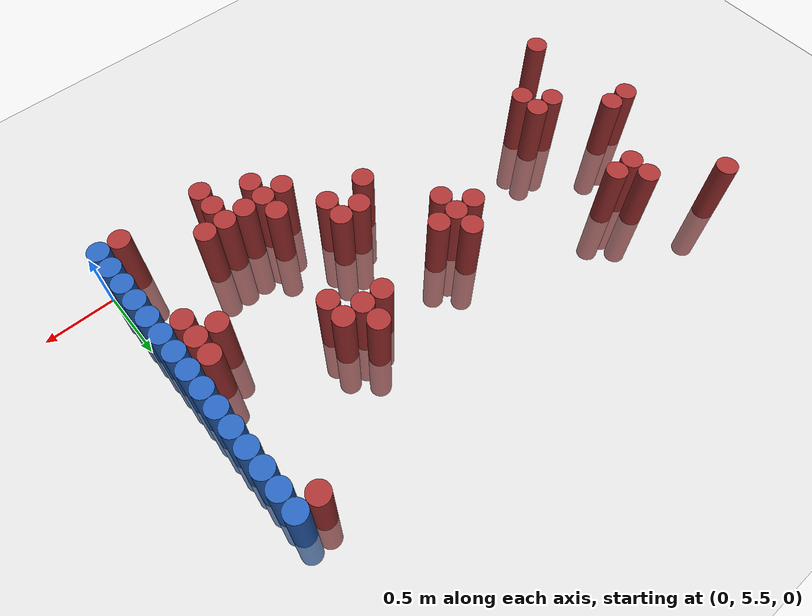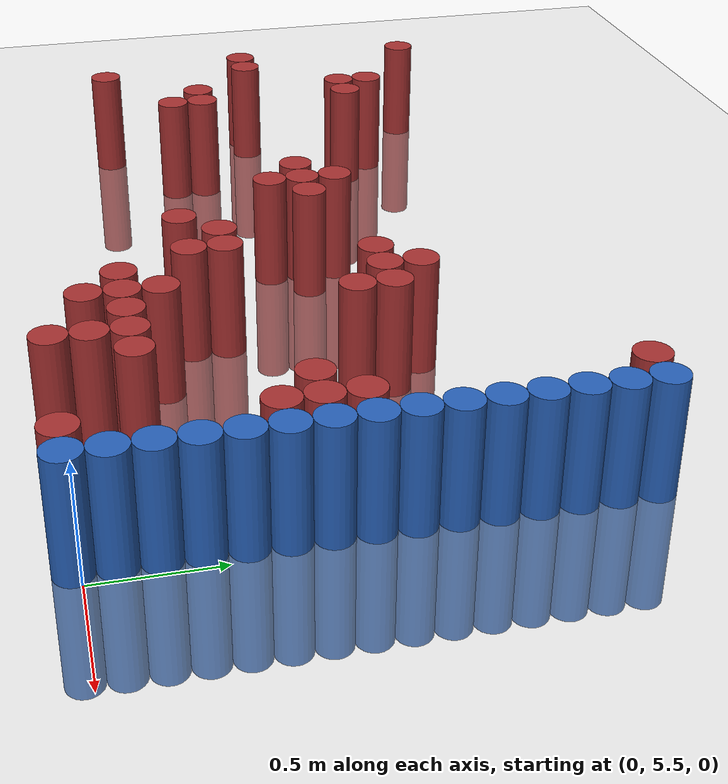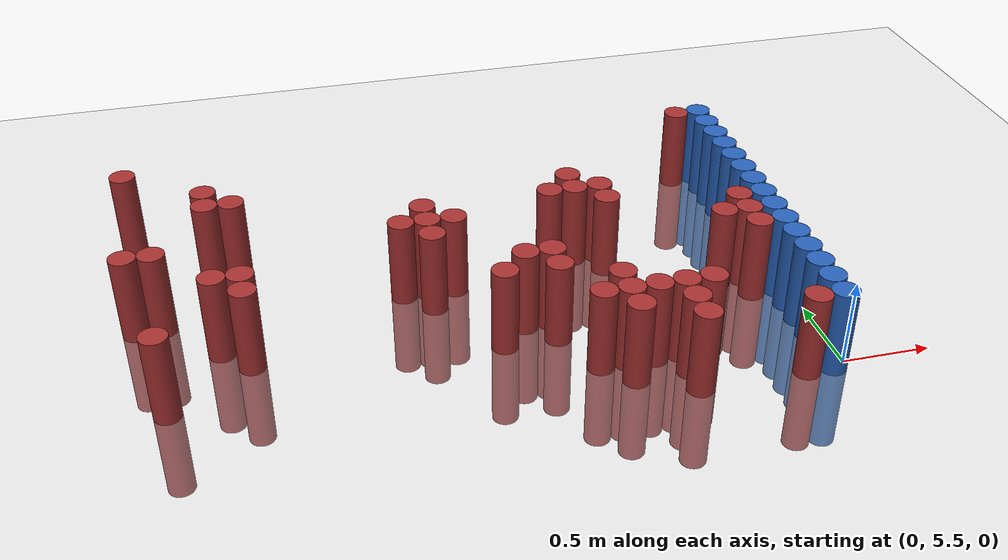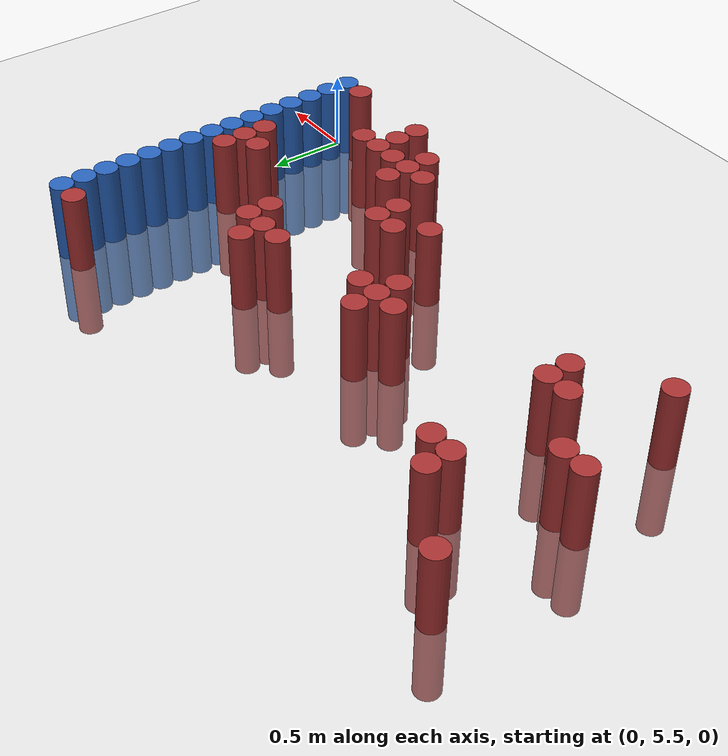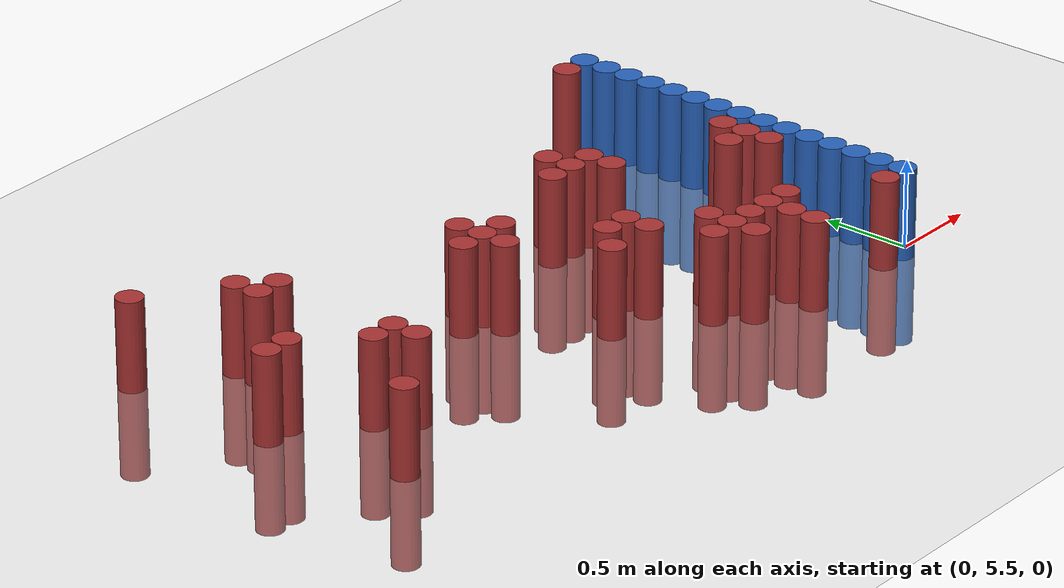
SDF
<sdf version="1.6">
 <world name="default">
  <model name="ground_plane">
   <static>1</static>
   <link name="link">
    <collision name="collision">
     <geometry><plane><normal>0 0 1</normal><size>100 100</size></plane></geometry>
     <surface><friction><ode><mu>100</mu><mu2>50</mu2></ode></friction></surface>
    </collision>
    <visual name="visual">
     <cast_shadows>0</cast_shadows>
     <geometry><plane><normal>0 0 1</normal><size>100 100</size></plane></geometry>
     <material>
      <script><uri>file://media/materials/scripts/gazebo.material</uri><name>Gazebo/Grey</name></script>
     </material>
    </visual>
   </link>
  </model>
  <model name="unit_cylinder_153">
   <static>1</static>
   <pose>-3.675000 6.675000 0.000000 0.000000 0.000000 0.000000</pose>
   <link name="link">
    <inertial>
     <mass>1</mass>
     <inertia><ixx>0.145833</ixx><ixy>0</ixy><ixz>0</ixz><iyy>0.145833</iyy><iyz>0</iyz><izz>0.125</izz></inertia>
    </inertial>
    <collision name="collision">
     <geometry><cylinder><radius>0.075000</radius><length>1</length></cylinder></geometry>
    </collision>
    <visual name="visual">
     <geometry><cylinder><radius>0.075000</radius><length>1</length></cylinder></geometry>
     <material>
      <ambient>0.648000 0.192000 0.192000 1</ambient>
      <diffuse>0.648000 0.192000 0.192000 1</diffuse>
     </material>
     <material>
      <script><name>Gazebo/Grey</name><uri>file://media/materials/scripts/gazebo.material</uri></script>
     </material>
    </visual>
   </link>
  </model>
  <model name="unit_cylinder_154">
   <static>1</static>
   <pose>-3.675000 7.575000 0.000000 0.000000 0.000000 0.000000</pose>
   <link name="link">
    <inertial>
     <mass>1</mass>
     <inertia><ixx>0.145833</ixx><ixy>0</ixy><ixz>0</ixz><iyy>0.145833</iyy><iyz>0</iyz><izz>0.125</izz></inertia>
    </inertial>
    <collision name="collision">
     <geometry><cylinder><radius>0.075000</radius><length>1</length></cylinder></geometry>
    </collision>
    <visual name="visual">
     <geometry><cylinder><radius>0.075000</radius><length>1</length></cylinder></geometry>
     <material>
      <ambient>0.648000 0.192000 0.192000 1</ambient>
      <diffuse>0.648000 0.192000 0.192000 1</diffuse>
     </material>
     <material>
      <script><name>Gazebo/Grey</name><uri>file://media/materials/scripts/gazebo.material</uri></script>
     </material>
    </visual>
   </link>
  </model>
  <model name="unit_cylinder_155">
   <static>1</static>
   <pose>-3.525000 5.925000 0.000000 0.000000 0.000000 0.000000</pose>
   <link name="link">
    <inertial>
     <mass>1</mass>
     <inertia><ixx>0.145833</ixx><ixy>0</ixy><ixz>0</ixz><iyy>0.145833</iyy><iyz>0</iyz><izz>0.125</izz></inertia>
    </inertial>
    <collision name="collision">
     <geometry><cylinder><radius>0.075000</radius><length>1</length></cylinder></geometry>
    </collision>
    <visual name="visual">
     <geometry><cylinder><radius>0.075000</radius><length>1</length></cylinder></geometry>
     <material>
      <ambient>0.648000 0.192000 0.192000 1</ambient>
      <diffuse>0.648000 0.192000 0.192000 1</diffuse>
     </material>
     <material>
      <script><name>Gazebo/Grey</name><uri>file://media/materials/scripts/gazebo.material</uri></script>
     </material>
    </visual>
   </link>
  </model>
  <model name="unit_cylinder_156">
   <static>1</static>
   <pose>-3.525000 6.675000 0.000000 0.000000 0.000000 0.000000</pose>
   <link name="link">
    <inertial>
     <mass>1</mass>
     <inertia><ixx>0.145833</ixx><ixy>0</ixy><ixz>0</ixz><iyy>0.145833</iyy><iyz>0</iyz><izz>0.125</izz></inertia>
    </inertial>
    <collision name="collision">
     <geometry><cylinder><radius>0.075000</radius><length>1</length></cylinder></geometry>
    </collision>
    <visual name="visual">
     <geometry><cylinder><radius>0.075000</radius><length>1</length></cylinder></geometry>
     <material>
      <ambient>0.648000 0.192000 0.192000 1</ambient>
      <diffuse>0.648000 0.192000 0.192000 1</diffuse>
     </material>
     <material>
      <script><name>Gazebo/Grey</name><uri>file://media/materials/scripts/gazebo.material</uri></script>
     </material>
    </visual>
   </link>
  </model>
  <model name="unit_cylinder_163">
   <static>1</static>
   <pose>-3.225000 6.375000 0.000000 0.000000 0.000000 0.000000</pose>
   <link name="link">
    <inertial>
     <mass>1</mass>
     <inertia><ixx>0.145833</ixx><ixy>0</ixy><ixz>0</ixz><iyy>0.145833</iyy><iyz>0</iyz><izz>0.125</izz></inertia>
    </inertial>
    <collision name="collision">
     <geometry><cylinder><radius>0.075000</radius><length>1</length></cylinder></geometry>
    </collision>
    <visual name="visual">
     <geometry><cylinder><radius>0.075000</radius><length>1</length></cylinder></geometry>
     <material>
      <ambient>0.648000 0.192000 0.192000 1</ambient>
      <diffuse>0.648000 0.192000 0.192000 1</diffuse>
     </material>
     <material>
      <script><name>Gazebo/Grey</name><uri>file://media/materials/scripts/gazebo.material</uri></script>
     </material>
    </visual>
   </link>
  </model>
  <model name="unit_cylinder_164">
   <static>1</static>
   <pose>-3.225000 7.125000 0.000000 0.000000 0.000000 0.000000</pose>
   <link name="link">
    <inertial>
     <mass>1</mass>
     <inertia><ixx>0.145833</ixx><ixy>0</ixy><ixz>0</ixz><iyy>0.145833</iyy><iyz>0</iyz><izz>0.125</izz></inertia>
    </inertial>
    <collision name="collision">
     <geometry><cylinder><radius>0.075000</radius><length>1</length></cylinder></geometry>
    </collision>
    <visual name="visual">
     <geometry><cylinder><radius>0.075000</radius><length>1</length></cylinder></geometry>
     <material>
      <ambient>0.648000 0.192000 0.192000 1</ambient>
      <diffuse>0.648000 0.192000 0.192000 1</diffuse>
     </material>
     <material>
      <script><name>Gazebo/Grey</name><uri>file://media/materials/scripts/gazebo.material</uri></script>
     </material>
    </visual>
   </link>
  </model>
  <model name="unit_cylinder_165">
   <static>1</static>
   <pose>-3.225000 7.275000 0.000000 0.000000 0.000000 0.000000</pose>
   <link name="link">
    <inertial>
     <mass>1</mass>
     <inertia><ixx>0.145833</ixx><ixy>0</ixy><ixz>0</ixz><iyy>0.145833</iyy><iyz>0</iyz><izz>0.125</izz></inertia>
    </inertial>
    <collision name="collision">
     <geometry><cylinder><radius>0.075000</radius><length>1</length></cylinder></geometry>
    </collision>
    <visual name="visual">
     <geometry><cylinder><radius>0.075000</radius><length>1</length></cylinder></geometry>
     <material>
      <ambient>0.648000 0.192000 0.192000 1</ambient>
      <diffuse>0.648000 0.192000 0.192000 1</diffuse>
     </material>
     <material>
      <script><name>Gazebo/Grey</name><uri>file://media/materials/scripts/gazebo.material</uri></script>
     </material>
    </visual>
   </link>
  </model>
  <model name="unit_cylinder_168">
   <static>1</static>
   <pose>-3.075000 6.225000 0.000000 0.000000 0.000000 0.000000</pose>
   <link name="link">
    <inertial>
     <mass>1</mass>
     <inertia><ixx>0.145833</ixx><ixy>0</ixy><ixz>0</ixz><iyy>0.145833</iyy><iyz>0</iyz><izz>0.125</izz></inertia>
    </inertial>
    <collision name="collision">
     <geometry><cylinder><radius>0.075000</radius><length>1</length></cylinder></geometry>
    </collision>
    <visual name="visual">
     <geometry><cylinder><radius>0.075000</radius><length>1</length></cylinder></geometry>
     <material>
      <ambient>0.648000 0.192000 0.192000 1</ambient>
      <diffuse>0.648000 0.192000 0.192000 1</diffuse>
     </material>
     <material>
      <script><name>Gazebo/Grey</name><uri>file://media/materials/scripts/gazebo.material</uri></script>
     </material>
    </visual>
   </link>
  </model>
  <model name="unit_cylinder_169">
   <static>1</static>
   <pose>-3.075000 6.375000 0.000000 0.000000 0.000000 0.000000</pose>
   <link name="link">
    <inertial>
     <mass>1</mass>
     <inertia><ixx>0.145833</ixx><ixy>0</ixy><ixz>0</ixz><iyy>0.145833</iyy><iyz>0</iyz><izz>0.125</izz></inertia>
    </inertial>
    <collision name="collision">
     <geometry><cylinder><radius>0.075000</radius><length>1</length></cylinder></geometry>
    </collision>
    <visual name="visual">
     <geometry><cylinder><radius>0.075000</radius><length>1</length></cylinder></geometry>
     <material>
      <ambient>0.648000 0.192000 0.192000 1</ambient>
      <diffuse>0.648000 0.192000 0.192000 1</diffuse>
     </material>
     <material>
      <script><name>Gazebo/Grey</name><uri>file://media/materials/scripts/gazebo.material</uri></script>
     </material>
    </visual>
   </link>
  </model>
  <model name="unit_cylinder_170">
   <static>1</static>
   <pose>-3.075000 7.125000 0.000000 0.000000 0.000000 0.000000</pose>
   <link name="link">
    <inertial>
     <mass>1</mass>
     <inertia><ixx>0.145833</ixx><ixy>0</ixy><ixz>0</ixz><iyy>0.145833</iyy><iyz>0</iyz><izz>0.125</izz></inertia>
    </inertial>
    <collision name="collision">
     <geometry><cylinder><radius>0.075000</radius><length>1</length></cylinder></geometry>
    </collision>
    <visual name="visual">
     <geometry><cylinder><radius>0.075000</radius><length>1</length></cylinder></geometry>
     <material>
      <ambient>0.648000 0.192000 0.192000 1</ambient>
      <diffuse>0.648000 0.192000 0.192000 1</diffuse>
     </material>
     <material>
      <script><name>Gazebo/Grey</name><uri>file://media/materials/scripts/gazebo.material</uri></script>
     </material>
    </visual>
   </link>
  </model>
  <model name="unit_cylinder_183">
   <static>1</static>
   <pose>-2.175000 6.675000 0.000000 0.000000 0.000000 0.000000</pose>
   <link name="link">
    <inertial>
     <mass>1</mass>
     <inertia><ixx>0.145833</ixx><ixy>0</ixy><ixz>0</ixz><iyy>0.145833</iyy><iyz>0</iyz><izz>0.125</izz></inertia>
    </inertial>
    <collision name="collision">
     <geometry><cylinder><radius>0.075000</radius><length>1</length></cylinder></geometry>
    </collision>
    <visual name="visual">
     <geometry><cylinder><radius>0.075000</radius><length>1</length></cylinder></geometry>
     <material>
      <ambient>0.648000 0.192000 0.192000 1</ambient>
      <diffuse>0.648000 0.192000 0.192000 1</diffuse>
     </material>
     <material>
      <script><name>Gazebo/Grey</name><uri>file://media/materials/scripts/gazebo.material</uri></script>
     </material>
    </visual>
   </link>
  </model>
  <model name="unit_cylinder_184">
   <static>1</static>
   <pose>-2.025000 6.525000 0.000000 0.000000 0.000000 0.000000</pose>
   <link name="link">
    <inertial>
     <mass>1</mass>
     <inertia><ixx>0.145833</ixx><ixy>0</ixy><ixz>0</ixz><iyy>0.145833</iyy><iyz>0</iyz><izz>0.125</izz></inertia>
    </inertial>
    <collision name="collision">
     <geometry><cylinder><radius>0.075000</radius><length>1</length></cylinder></geometry>
    </collision>
    <visual name="visual">
     <geometry><cylinder><radius>0.075000</radius><length>1</length></cylinder></geometry>
     <material>
      <ambient>0.648000 0.192000 0.192000 1</ambient>
      <diffuse>0.648000 0.192000 0.192000 1</diffuse>
     </material>
     <material>
      <script><name>Gazebo/Grey</name><uri>file://media/materials/scripts/gazebo.material</uri></script>
     </material>
    </visual>
   </link>
  </model>
  <model name="unit_cylinder_185">
   <static>1</static>
   <pose>-2.025000 6.675000 0.000000 0.000000 0.000000 0.000000</pose>
   <link name="link">
    <inertial>
     <mass>1</mass>
     <inertia><ixx>0.145833</ixx><ixy>0</ixy><ixz>0</ixz><iyy>0.145833</iyy><iyz>0</iyz><izz>0.125</izz></inertia>
    </inertial>
    <collision name="collision">
     <geometry><cylinder><radius>0.075000</radius><length>1</length></cylinder></geometry>
    </collision>
    <visual name="visual">
     <geometry><cylinder><radius>0.075000</radius><length>1</length></cylinder></geometry>
     <material>
      <ambient>0.648000 0.192000 0.192000 1</ambient>
      <diffuse>0.648000 0.192000 0.192000 1</diffuse>
     </material>
     <material>
      <script><name>Gazebo/Grey</name><uri>file://media/materials/scripts/gazebo.material</uri></script>
     </material>
    </visual>
   </link>
  </model>
  <model name="unit_cylinder_186">
   <static>1</static>
   <pose>-2.025000 6.825000 0.000000 0.000000 0.000000 0.000000</pose>
   <link name="link">
    <inertial>
     <mass>1</mass>
     <inertia><ixx>0.145833</ixx><ixy>0</ixy><ixz>0</ixz><iyy>0.145833</iyy><iyz>0</iyz><izz>0.125</izz></inertia>
    </inertial>
    <collision name="collision">
     <geometry><cylinder><radius>0.075000</radius><length>1</length></cylinder></geometry>
    </collision>
    <visual name="visual">
     <geometry><cylinder><radius>0.075000</radius><length>1</length></cylinder></geometry>
     <material>
      <ambient>0.648000 0.192000 0.192000 1</ambient>
      <diffuse>0.648000 0.192000 0.192000 1</diffuse>
     </material>
     <material>
      <script><name>Gazebo/Grey</name><uri>file://media/materials/scripts/gazebo.material</uri></script>
     </material>
    </visual>
   </link>
  </model>
  <model name="unit_cylinder_190">
   <static>1</static>
   <pose>-1.875000 6.675000 0.000000 0.000000 0.000000 0.000000</pose>
   <link name="link">
    <inertial>
     <mass>1</mass>
     <inertia><ixx>0.145833</ixx><ixy>0</ixy><ixz>0</ixz><iyy>0.145833</iyy><iyz>0</iyz><izz>0.125</izz></inertia>
    </inertial>
    <collision name="collision">
     <geometry><cylinder><radius>0.075000</radius><length>1</length></cylinder></geometry>
    </collision>
    <visual name="visual">
     <geometry><cylinder><radius>0.075000</radius><length>1</length></cylinder></geometry>
     <material>
      <ambient>0.648000 0.192000 0.192000 1</ambient>
      <diffuse>0.648000 0.192000 0.192000 1</diffuse>
     </material>
     <material>
      <script><name>Gazebo/Grey</name><uri>file://media/materials/scripts/gazebo.material</uri></script>
     </material>
    </visual>
   </link>
  </model>
  <model name="unit_cylinder_195">
   <static>1</static>
   <pose>-1.725000 6.075000 0.000000 0.000000 0.000000 0.000000</pose>
   <link name="link">
    <inertial>
     <mass>1</mass>
     <inertia><ixx>0.145833</ixx><ixy>0</ixy><ixz>0</ixz><iyy>0.145833</iyy><iyz>0</iyz><izz>0.125</izz></inertia>
    </inertial>
    <collision name="collision">
     <geometry><cylinder><radius>0.075000</radius><length>1</length></cylinder></geometry>
    </collision>
    <visual name="visual">
     <geometry><cylinder><radius>0.075000</radius><length>1</length></cylinder></geometry>
     <material>
      <ambient>0.648000 0.192000 0.192000 1</ambient>
      <diffuse>0.648000 0.192000 0.192000 1</diffuse>
     </material>
     <material>
      <script><name>Gazebo/Grey</name><uri>file://media/materials/scripts/gazebo.material</uri></script>
     </material>
    </visual>
   </link>
  </model>
  <model name="unit_cylinder_197">
   <static>1</static>
   <pose>-1.575000 6.225000 0.000000 0.000000 0.000000 0.000000</pose>
   <link name="link">
    <inertial>
     <mass>1</mass>
     <inertia><ixx>0.145833</ixx><ixy>0</ixy><ixz>0</ixz><iyy>0.145833</iyy><iyz>0</iyz><izz>0.125</izz></inertia>
    </inertial>
    <collision name="collision">
     <geometry><cylinder><radius>0.075000</radius><length>1</length></cylinder></geometry>
    </collision>
    <visual name="visual">
     <geometry><cylinder><radius>0.075000</radius><length>1</length></cylinder></geometry>
     <material>
      <ambient>0.648000 0.192000 0.192000 1</ambient>
      <diffuse>0.648000 0.192000 0.192000 1</diffuse>
     </material>
     <material>
      <script><name>Gazebo/Grey</name><uri>file://media/materials/scripts/gazebo.material</uri></script>
     </material>
    </visual>
   </link>
  </model>
  <model name="unit_cylinder_198">
   <static>1</static>
   <pose>-1.425000 6.075000 0.000000 0.000000 0.000000 0.000000</pose>
   <link name="link">
    <inertial>
     <mass>1</mass>
     <inertia><ixx>0.145833</ixx><ixy>0</ixy><ixz>0</ixz><iyy>0.145833</iyy><iyz>0</iyz><izz>0.125</izz></inertia>
    </inertial>
    <collision name="collision">
     <geometry><cylinder><radius>0.075000</radius><length>1</length></cylinder></geometry>
    </collision>
    <visual name="visual">
     <geometry><cylinder><radius>0.075000</radius><length>1</length></cylinder></geometry>
     <material>
      <ambient>0.648000 0.192000 0.192000 1</ambient>
      <diffuse>0.648000 0.192000 0.192000 1</diffuse>
     </material>
     <material>
      <script><name>Gazebo/Grey</name><uri>file://media/materials/scripts/gazebo.material</uri></script>
     </material>
    </visual>
   </link>
  </model>
  <model name="unit_cylinder_199">
   <static>1</static>
   <pose>-1.425000 6.225000 0.000000 0.000000 0.000000 0.000000</pose>
   <link name="link">
    <inertial>
     <mass>1</mass>
     <inertia><ixx>0.145833</ixx><ixy>0</ixy><ixz>0</ixz><iyy>0.145833</iyy><iyz>0</iyz><izz>0.125</izz></inertia>
    </inertial>
    <collision name="collision">
     <geometry><cylinder><radius>0.075000</radius><length>1</length></cylinder></geometry>
    </collision>
    <visual name="visual">
     <geometry><cylinder><radius>0.075000</radius><length>1</length></cylinder></geometry>
     <material>
      <ambient>0.648000 0.192000 0.192000 1</ambient>
      <diffuse>0.648000 0.192000 0.192000 1</diffuse>
     </material>
     <material>
      <script><name>Gazebo/Grey</name><uri>file://media/materials/scripts/gazebo.material</uri></script>
     </material>
    </visual>
   </link>
  </model>
  <model name="unit_cylinder_200">
   <static>1</static>
   <pose>-1.275000 5.775000 0.000000 0.000000 0.000000 0.000000</pose>
   <link name="link">
    <inertial>
     <mass>1</mass>
     <inertia><ixx>0.145833</ixx><ixy>0</ixy><ixz>0</ixz><iyy>0.145833</iyy><iyz>0</iyz><izz>0.125</izz></inertia>
    </inertial>
    <collision name="collision">
     <geometry><cylinder><radius>0.075000</radius><length>1</length></cylinder></geometry>
    </collision>
    <visual name="visual">
     <geometry><cylinder><radius>0.075000</radius><length>1</length></cylinder></geometry>
     <material>
      <ambient>0.648000 0.192000 0.192000 1</ambient>
      <diffuse>0.648000 0.192000 0.192000 1</diffuse>
     </material>
     <material>
      <script><name>Gazebo/Grey</name><uri>file://media/materials/scripts/gazebo.material</uri></script>
     </material>
    </visual>
   </link>
  </model>
  <model name="unit_cylinder_201">
   <static>1</static>
   <pose>-1.275000 6.825000 0.000000 0.000000 0.000000 0.000000</pose>
   <link name="link">
    <inertial>
     <mass>1</mass>
     <inertia><ixx>0.145833</ixx><ixy>0</ixy><ixz>0</ixz><iyy>0.145833</iyy><iyz>0</iyz><izz>0.125</izz></inertia>
    </inertial>
    <collision name="collision">
     <geometry><cylinder><radius>0.075000</radius><length>1</length></cylinder></geometry>
    </collision>
    <visual name="visual">
     <geometry><cylinder><radius>0.075000</radius><length>1</length></cylinder></geometry>
     <material>
      <ambient>0.648000 0.192000 0.192000 1</ambient>
      <diffuse>0.648000 0.192000 0.192000 1</diffuse>
     </material>
     <material>
      <script><name>Gazebo/Grey</name><uri>file://media/materials/scripts/gazebo.material</uri></script>
     </material>
    </visual>
   </link>
  </model>
  <model name="unit_cylinder_204">
   <static>1</static>
   <pose>-1.125000 5.625000 0.000000 0.000000 0.000000 0.000000</pose>
   <link name="link">
    <inertial>
     <mass>1</mass>
     <inertia><ixx>0.145833</ixx><ixy>0</ixy><ixz>0</ixz><iyy>0.145833</iyy><iyz>0</iyz><izz>0.125</izz></inertia>
    </inertial>
    <collision name="collision">
     <geometry><cylinder><radius>0.075000</radius><length>1</length></cylinder></geometry>
    </collision>
    <visual name="visual">
     <geometry><cylinder><radius>0.075000</radius><length>1</length></cylinder></geometry>
     <material>
      <ambient>0.648000 0.192000 0.192000 1</ambient>
      <diffuse>0.648000 0.192000 0.192000 1</diffuse>
     </material>
     <material>
      <script><name>Gazebo/Grey</name><uri>file://media/materials/scripts/gazebo.material</uri></script>
     </material>
    </visual>
   </link>
  </model>
  <model name="unit_cylinder_205">
   <static>1</static>
   <pose>-1.125000 5.775000 0.000000 0.000000 0.000000 0.000000</pose>
   <link name="link">
    <inertial>
     <mass>1</mass>
     <inertia><ixx>0.145833</ixx><ixy>0</ixy><ixz>0</ixz><iyy>0.145833</iyy><iyz>0</iyz><izz>0.125</izz></inertia>
    </inertial>
    <collision name="collision">
     <geometry><cylinder><radius>0.075000</radius><length>1</length></cylinder></geometry>
    </collision>
    <visual name="visual">
     <geometry><cylinder><radius>0.075000</radius><length>1</length></cylinder></geometry>
     <material>
      <ambient>0.648000 0.192000 0.192000 1</ambient>
      <diffuse>0.648000 0.192000 0.192000 1</diffuse>
     </material>
     <material>
      <script><name>Gazebo/Grey</name><uri>file://media/materials/scripts/gazebo.material</uri></script>
     </material>
    </visual>
   </link>
  </model>
  <model name="unit_cylinder_206">
   <static>1</static>
   <pose>-1.125000 5.925000 0.000000 0.000000 0.000000 0.000000</pose>
   <link name="link">
    <inertial>
     <mass>1</mass>
     <inertia><ixx>0.145833</ixx><ixy>0</ixy><ixz>0</ixz><iyy>0.145833</iyy><iyz>0</iyz><izz>0.125</izz></inertia>
    </inertial>
    <collision name="collision">
     <geometry><cylinder><radius>0.075000</radius><length>1</length></cylinder></geometry>
    </collision>
    <visual name="visual">
     <geometry><cylinder><radius>0.075000</radius><length>1</length></cylinder></geometry>
     <material>
      <ambient>0.648000 0.192000 0.192000 1</ambient>
      <diffuse>0.648000 0.192000 0.192000 1</diffuse>
     </material>
     <material>
      <script><name>Gazebo/Grey</name><uri>file://media/materials/scripts/gazebo.material</uri></script>
     </material>
    </visual>
   </link>
  </model>
  <model name="unit_cylinder_207">
   <static>1</static>
   <pose>-1.125000 6.825000 0.000000 0.000000 0.000000 0.000000</pose>
   <link name="link">
    <inertial>
     <mass>1</mass>
     <inertia><ixx>0.145833</ixx><ixy>0</ixy><ixz>0</ixz><iyy>0.145833</iyy><iyz>0</iyz><izz>0.125</izz></inertia>
    </inertial>
    <collision name="collision">
     <geometry><cylinder><radius>0.075000</radius><length>1</length></cylinder></geometry>
    </collision>
    <visual name="visual">
     <geometry><cylinder><radius>0.075000</radius><length>1</length></cylinder></geometry>
     <material>
      <ambient>0.648000 0.192000 0.192000 1</ambient>
      <diffuse>0.648000 0.192000 0.192000 1</diffuse>
     </material>
     <material>
      <script><name>Gazebo/Grey</name><uri>file://media/materials/scripts/gazebo.material</uri></script>
     </material>
    </visual>
   </link>
  </model>
  <model name="unit_cylinder_208">
   <static>1</static>
   <pose>-1.125000 6.975000 0.000000 0.000000 0.000000 0.000000</pose>
   <link name="link">
    <inertial>
     <mass>1</mass>
     <inertia><ixx>0.145833</ixx><ixy>0</ixy><ixz>0</ixz><iyy>0.145833</iyy><iyz>0</iyz><izz>0.125</izz></inertia>
    </inertial>
    <collision name="collision">
     <geometry><cylinder><radius>0.075000</radius><length>1</length></cylinder></geometry>
    </collision>
    <visual name="visual">
     <geometry><cylinder><radius>0.075000</radius><length>1</length></cylinder></geometry>
     <material>
      <ambient>0.648000 0.192000 0.192000 1</ambient>
      <diffuse>0.648000 0.192000 0.192000 1</diffuse>
     </material>
     <material>
      <script><name>Gazebo/Grey</name><uri>file://media/materials/scripts/gazebo.material</uri></script>
     </material>
    </visual>
   </link>
  </model>
  <model name="unit_cylinder_211">
   <static>1</static>
   <pose>-0.975000 5.775000 0.000000 0.000000 0.000000 0.000000</pose>
   <link name="link">
    <inertial>
     <mass>1</mass>
     <inertia><ixx>0.145833</ixx><ixy>0</ixy><ixz>0</ixz><iyy>0.145833</iyy><iyz>0</iyz><izz>0.125</izz></inertia>
    </inertial>
    <collision name="collision">
     <geometry><cylinder><radius>0.075000</radius><length>1</length></cylinder></geometry>
    </collision>
    <visual name="visual">
     <geometry><cylinder><radius>0.075000</radius><length>1</length></cylinder></geometry>
     <material>
      <ambient>0.648000 0.192000 0.192000 1</ambient>
      <diffuse>0.648000 0.192000 0.192000 1</diffuse>
     </material>
     <material>
      <script><name>Gazebo/Grey</name><uri>file://media/materials/scripts/gazebo.material</uri></script>
     </material>
    </visual>
   </link>
  </model>
  <model name="unit_cylinder_212">
   <static>1</static>
   <pose>-0.975000 6.675000 0.000000 0.000000 0.000000 0.000000</pose>
   <link name="link">
    <inertial>
     <mass>1</mass>
     <inertia><ixx>0.145833</ixx><ixy>0</ixy><ixz>0</ixz><iyy>0.145833</iyy><iyz>0</iyz><izz>0.125</izz></inertia>
    </inertial>
    <collision name="collision">
     <geometry><cylinder><radius>0.075000</radius><length>1</length></cylinder></geometry>
    </collision>
    <visual name="visual">
     <geometry><cylinder><radius>0.075000</radius><length>1</length></cylinder></geometry>
     <material>
      <ambient>0.648000 0.192000 0.192000 1</ambient>
      <diffuse>0.648000 0.192000 0.192000 1</diffuse>
     </material>
     <material>
      <script><name>Gazebo/Grey</name><uri>file://media/materials/scripts/gazebo.material</uri></script>
     </material>
    </visual>
   </link>
  </model>
  <model name="unit_cylinder_213">
   <static>1</static>
   <pose>-0.975000 6.825000 0.000000 0.000000 0.000000 0.000000</pose>
   <link name="link">
    <inertial>
     <mass>1</mass>
     <inertia><ixx>0.145833</ixx><ixy>0</ixy><ixz>0</ixz><iyy>0.145833</iyy><iyz>0</iyz><izz>0.125</izz></inertia>
    </inertial>
    <collision name="collision">
     <geometry><cylinder><radius>0.075000</radius><length>1</length></cylinder></geometry>
    </collision>
    <visual name="visual">
     <geometry><cylinder><radius>0.075000</radius><length>1</length></cylinder></geometry>
     <material>
      <ambient>0.648000 0.192000 0.192000 1</ambient>
      <diffuse>0.648000 0.192000 0.192000 1</diffuse>
     </material>
     <material>
      <script><name>Gazebo/Grey</name><uri>file://media/materials/scripts/gazebo.material</uri></script>
     </material>
    </visual>
   </link>
  </model>
  <model name="unit_cylinder_215">
   <static>1</static>
   <pose>-0.825000 5.475000 0.000000 0.000000 0.000000 0.000000</pose>
   <link name="link">
    <inertial>
     <mass>1</mass>
     <inertia><ixx>0.145833</ixx><ixy>0</ixy><ixz>0</ixz><iyy>0.145833</iyy><iyz>0</iyz><izz>0.125</izz></inertia>
    </inertial>
    <collision name="collision">
     <geometry><cylinder><radius>0.075000</radius><length>1</length></cylinder></geometry>
    </collision>
    <visual name="visual">
     <geometry><cylinder><radius>0.075000</radius><length>1</length></cylinder></geometry>
     <material>
      <ambient>0.648000 0.192000 0.192000 1</ambient>
      <diffuse>0.648000 0.192000 0.192000 1</diffuse>
     </material>
     <material>
      <script><name>Gazebo/Grey</name><uri>file://media/materials/scripts/gazebo.material</uri></script>
     </material>
    </visual>
   </link>
  </model>
  <model name="unit_cylinder_216">
   <static>1</static>
   <pose>-0.825000 5.625000 0.000000 0.000000 0.000000 0.000000</pose>
   <link name="link">
    <inertial>
     <mass>1</mass>
     <inertia><ixx>0.145833</ixx><ixy>0</ixy><ixz>0</ixz><iyy>0.145833</iyy><iyz>0</iyz><izz>0.125</izz></inertia>
    </inertial>
    <collision name="collision">
     <geometry><cylinder><radius>0.075000</radius><length>1</length></cylinder></geometry>
    </collision>
    <visual name="visual">
     <geometry><cylinder><radius>0.075000</radius><length>1</length></cylinder></geometry>
     <material>
      <ambient>0.648000 0.192000 0.192000 1</ambient>
      <diffuse>0.648000 0.192000 0.192000 1</diffuse>
     </material>
     <material>
      <script><name>Gazebo/Grey</name><uri>file://media/materials/scripts/gazebo.material</uri></script>
     </material>
    </visual>
   </link>
  </model>
  <model name="unit_cylinder_217">
   <static>1</static>
   <pose>-0.825000 5.775000 0.000000 0.000000 0.000000 0.000000</pose>
   <link name="link">
    <inertial>
     <mass>1</mass>
     <inertia><ixx>0.145833</ixx><ixy>0</ixy><ixz>0</ixz><iyy>0.145833</iyy><iyz>0</iyz><izz>0.125</izz></inertia>
    </inertial>
    <collision name="collision">
     <geometry><cylinder><radius>0.075000</radius><length>1</length></cylinder></geometry>
    </collision>
    <visual name="visual">
     <geometry><cylinder><radius>0.075000</radius><length>1</length></cylinder></geometry>
     <material>
      <ambient>0.648000 0.192000 0.192000 1</ambient>
      <diffuse>0.648000 0.192000 0.192000 1</diffuse>
     </material>
     <material>
      <script><name>Gazebo/Grey</name><uri>file://media/materials/scripts/gazebo.material</uri></script>
     </material>
    </visual>
   </link>
  </model>
  <model name="unit_cylinder_221">
   <static>1</static>
   <pose>-0.675000 5.775000 0.000000 0.000000 0.000000 0.000000</pose>
   <link name="link">
    <inertial>
     <mass>1</mass>
     <inertia><ixx>0.145833</ixx><ixy>0</ixy><ixz>0</ixz><iyy>0.145833</iyy><iyz>0</iyz><izz>0.125</izz></inertia>
    </inertial>
    <collision name="collision">
     <geometry><cylinder><radius>0.075000</radius><length>1</length></cylinder></geometry>
    </collision>
    <visual name="visual">
     <geometry><cylinder><radius>0.075000</radius><length>1</length></cylinder></geometry>
     <material>
      <ambient>0.648000 0.192000 0.192000 1</ambient>
      <diffuse>0.648000 0.192000 0.192000 1</diffuse>
     </material>
     <material>
      <script><name>Gazebo/Grey</name><uri>file://media/materials/scripts/gazebo.material</uri></script>
     </material>
    </visual>
   </link>
  </model>
  <model name="unit_cylinder_229">
   <static>1</static>
   <pose>-0.375000 6.375000 0.000000 0.000000 0.000000 0.000000</pose>
   <link name="link">
    <inertial>
     <mass>1</mass>
     <inertia><ixx>0.145833</ixx><ixy>0</ixy><ixz>0</ixz><iyy>0.145833</iyy><iyz>0</iyz><izz>0.125</izz></inertia>
    </inertial>
    <collision name="collision">
     <geometry><cylinder><radius>0.075000</radius><length>1</length></cylinder></geometry>
    </collision>
    <visual name="visual">
     <geometry><cylinder><radius>0.075000</radius><length>1</length></cylinder></geometry>
     <material>
      <ambient>0.648000 0.192000 0.192000 1</ambient>
      <diffuse>0.648000 0.192000 0.192000 1</diffuse>
     </material>
     <material>
      <script><name>Gazebo/Grey</name><uri>file://media/materials/scripts/gazebo.material</uri></script>
     </material>
    </visual>
   </link>
  </model>
  <model name="unit_cylinder_235">
   <static>1</static>
   <pose>-0.225000 5.475000 0.000000 0.000000 0.000000 0.000000</pose>
   <link name="link">
    <inertial>
     <mass>1</mass>
     <inertia><ixx>0.145833</ixx><ixy>0</ixy><ixz>0</ixz><iyy>0.145833</iyy><iyz>0</iyz><izz>0.125</izz></inertia>
    </inertial>
    <collision name="collision">
     <geometry><cylinder><radius>0.075000</radius><length>1</length></cylinder></geometry>
    </collision>
    <visual name="visual">
     <geometry><cylinder><radius>0.075000</radius><length>1</length></cylinder></geometry>
     <material>
      <ambient>0.648000 0.192000 0.192000 1</ambient>
      <diffuse>0.648000 0.192000 0.192000 1</diffuse>
     </material>
     <material>
      <script><name>Gazebo/Grey</name><uri>file://media/materials/scripts/gazebo.material</uri></script>
     </material>
    </visual>
   </link>
  </model>
  <model name="unit_cylinder_236">
   <static>1</static>
   <pose>-0.225000 6.225000 0.000000 0.000000 0.000000 0.000000</pose>
   <link name="link">
    <inertial>
     <mass>1</mass>
     <inertia><ixx>0.145833</ixx><ixy>0</ixy><ixz>0</ixz><iyy>0.145833</iyy><iyz>0</iyz><izz>0.125</izz></inertia>
    </inertial>
    <collision name="collision">
     <geometry><cylinder><radius>0.075000</radius><length>1</length></cylinder></geometry>
    </collision>
    <visual name="visual">
     <geometry><cylinder><radius>0.075000</radius><length>1</length></cylinder></geometry>
     <material>
      <ambient>0.648000 0.192000 0.192000 1</ambient>
      <diffuse>0.648000 0.192000 0.192000 1</diffuse>
     </material>
     <material>
      <script><name>Gazebo/Grey</name><uri>file://media/materials/scripts/gazebo.material</uri></script>
     </material>
    </visual>
   </link>
  </model>
  <model name="unit_cylinder_237">
   <static>1</static>
   <pose>-0.225000 6.375000 0.000000 0.000000 0.000000 0.000000</pose>
   <link name="link">
    <inertial>
     <mass>1</mass>
     <inertia><ixx>0.145833</ixx><ixy>0</ixy><ixz>0</ixz><iyy>0.145833</iyy><iyz>0</iyz><izz>0.125</izz></inertia>
    </inertial>
    <collision name="collision">
     <geometry><cylinder><radius>0.075000</radius><length>1</length></cylinder></geometry>
    </collision>
    <visual name="visual">
     <geometry><cylinder><radius>0.075000</radius><length>1</length></cylinder></geometry>
     <material>
      <ambient>0.648000 0.192000 0.192000 1</ambient>
      <diffuse>0.648000 0.192000 0.192000 1</diffuse>
     </material>
     <material>
      <script><name>Gazebo/Grey</name><uri>file://media/materials/scripts/gazebo.material</uri></script>
     </material>
    </visual>
   </link>
  </model>
  <model name="unit_cylinder_238">
   <static>1</static>
   <pose>-0.225000 6.525000 0.000000 0.000000 0.000000 0.000000</pose>
   <link name="link">
    <inertial>
     <mass>1</mass>
     <inertia><ixx>0.145833</ixx><ixy>0</ixy><ixz>0</ixz><iyy>0.145833</iyy><iyz>0</iyz><izz>0.125</izz></inertia>
    </inertial>
    <collision name="collision">
     <geometry><cylinder><radius>0.075000</radius><length>1</length></cylinder></geometry>
    </collision>
    <visual name="visual">
     <geometry><cylinder><radius>0.075000</radius><length>1</length></cylinder></geometry>
     <material>
      <ambient>0.648000 0.192000 0.192000 1</ambient>
      <diffuse>0.648000 0.192000 0.192000 1</diffuse>
     </material>
     <material>
      <script><name>Gazebo/Grey</name><uri>file://media/materials/scripts/gazebo.material</uri></script>
     </material>
    </visual>
   </link>
  </model>
  <model name="unit_cylinder_239">
   <static>1</static>
   <pose>-0.225000 7.575000 0.000000 0.000000 0.000000 0.000000</pose>
   <link name="link">
    <inertial>
     <mass>1</mass>
     <inertia><ixx>0.145833</ixx><ixy>0</ixy><ixz>0</ixz><iyy>0.145833</iyy><iyz>0</iyz><izz>0.125</izz></inertia>
    </inertial>
    <collision name="collision">
     <geometry><cylinder><radius>0.075000</radius><length>1</length></cylinder></geometry>
    </collision>
    <visual name="visual">
     <geometry><cylinder><radius>0.075000</radius><length>1</length></cylinder></geometry>
     <material>
      <ambient>0.648000 0.192000 0.192000 1</ambient>
      <diffuse>0.648000 0.192000 0.192000 1</diffuse>
     </material>
     <material>
      <script><name>Gazebo/Grey</name><uri>file://media/materials/scripts/gazebo.material</uri></script>
     </material>
    </visual>
   </link>
  </model>
  <model name="unit_cylinder_244">
   <static>1</static>
   <pose>-0.075000 5.475000 0.000000 0.000000 0.000000 0.000000</pose>
   <link name="link">
    <inertial>
     <mass>1</mass>
     <inertia><ixx>0.145833</ixx><ixy>0</ixy><ixz>0</ixz><iyy>0.145833</iyy><iyz>0</iyz><izz>0.125</izz></inertia>
    </inertial>
    <collision name="collision">
     <geometry><cylinder><radius>0.075000</radius><length>1</length></cylinder></geometry>
    </collision>
    <visual name="visual">
     <geometry><cylinder><radius>0.075000</radius><length>1</length></cylinder></geometry>
     <material>
      <ambient>0.152000 0.379000 0.720000 1</ambient>
      <diffuse>0.152000 0.379000 0.720000 1</diffuse>
     </material>
     <material>
      <script><name>Gazebo/Grey</name><uri>file://media/materials/scripts/gazebo.material</uri></script>
     </material>
    </visual>
   </link>
  </model>
  <model name="unit_cylinder_245">
   <static>1</static>
   <pose>-0.075000 5.625000 0.000000 0.000000 0.000000 0.000000</pose>
   <link name="link">
    <inertial>
     <mass>1</mass>
     <inertia><ixx>0.145833</ixx><ixy>0</ixy><ixz>0</ixz><iyy>0.145833</iyy><iyz>0</iyz><izz>0.125</izz></inertia>
    </inertial>
    <collision name="collision">
     <geometry><cylinder><radius>0.075000</radius><length>1</length></cylinder></geometry>
    </collision>
    <visual name="visual">
     <geometry><cylinder><radius>0.075000</radius><length>1</length></cylinder></geometry>
     <material>
      <ambient>0.152000 0.379000 0.720000 1</ambient>
      <diffuse>0.152000 0.379000 0.720000 1</diffuse>
     </material>
     <material>
      <script><name>Gazebo/Grey</name><uri>file://media/materials/scripts/gazebo.material</uri></script>
     </material>
    </visual>
   </link>
  </model>
  <model name="unit_cylinder_246">
   <static>1</static>
   <pose>-0.075000 5.775000 0.000000 0.000000 0.000000 0.000000</pose>
   <link name="link">
    <inertial>
     <mass>1</mass>
     <inertia><ixx>0.145833</ixx><ixy>0</ixy><ixz>0</ixz><iyy>0.145833</iyy><iyz>0</iyz><izz>0.125</izz></inertia>
    </inertial>
    <collision name="collision">
     <geometry><cylinder><radius>0.075000</radius><length>1</length></cylinder></geometry>
    </collision>
    <visual name="visual">
     <geometry><cylinder><radius>0.075000</radius><length>1</length></cylinder></geometry>
     <material>
      <ambient>0.152000 0.379000 0.720000 1</ambient>
      <diffuse>0.152000 0.379000 0.720000 1</diffuse>
     </material>
     <material>
      <script><name>Gazebo/Grey</name><uri>file://media/materials/scripts/gazebo.material</uri></script>
     </material>
    </visual>
   </link>
  </model>
  <model name="unit_cylinder_247">
   <static>1</static>
   <pose>-0.075000 5.925000 0.000000 0.000000 0.000000 0.000000</pose>
   <link name="link">
    <inertial>
     <mass>1</mass>
     <inertia><ixx>0.145833</ixx><ixy>0</ixy><ixz>0</ixz><iyy>0.145833</iyy><iyz>0</iyz><izz>0.125</izz></inertia>
    </inertial>
    <collision name="collision">
     <geometry><cylinder><radius>0.075000</radius><length>1</length></cylinder></geometry>
    </collision>
    <visual name="visual">
     <geometry><cylinder><radius>0.075000</radius><length>1</length></cylinder></geometry>
     <material>
      <ambient>0.152000 0.379000 0.720000 1</ambient>
      <diffuse>0.152000 0.379000 0.720000 1</diffuse>
     </material>
     <material>
      <script><name>Gazebo/Grey</name><uri>file://media/materials/scripts/gazebo.material</uri></script>
     </material>
    </visual>
   </link>
  </model>
  <model name="unit_cylinder_248">
   <static>1</static>
   <pose>-0.075000 6.075000 0.000000 0.000000 0.000000 0.000000</pose>
   <link name="link">
    <inertial>
     <mass>1</mass>
     <inertia><ixx>0.145833</ixx><ixy>0</ixy><ixz>0</ixz><iyy>0.145833</iyy><iyz>0</iyz><izz>0.125</izz></inertia>
    </inertial>
    <collision name="collision">
     <geometry><cylinder><radius>0.075000</radius><length>1</length></cylinder></geometry>
    </collision>
    <visual name="visual">
     <geometry><cylinder><radius>0.075000</radius><length>1</length></cylinder></geometry>
     <material>
      <ambient>0.152000 0.379000 0.720000 1</ambient>
      <diffuse>0.152000 0.379000 0.720000 1</diffuse>
     </material>
     <material>
      <script><name>Gazebo/Grey</name><uri>file://media/materials/scripts/gazebo.material</uri></script>
     </material>
    </visual>
   </link>
  </model>
  <model name="unit_cylinder_249">
   <static>1</static>
   <pose>-0.075000 6.225000 0.000000 0.000000 0.000000 0.000000</pose>
   <link name="link">
    <inertial>
     <mass>1</mass>
     <inertia><ixx>0.145833</ixx><ixy>0</ixy><ixz>0</ixz><iyy>0.145833</iyy><iyz>0</iyz><izz>0.125</izz></inertia>
    </inertial>
    <collision name="collision">
     <geometry><cylinder><radius>0.075000</radius><length>1</length></cylinder></geometry>
    </collision>
    <visual name="visual">
     <geometry><cylinder><radius>0.075000</radius><length>1</length></cylinder></geometry>
     <material>
      <ambient>0.152000 0.379000 0.720000 1</ambient>
      <diffuse>0.152000 0.379000 0.720000 1</diffuse>
     </material>
     <material>
      <script><name>Gazebo/Grey</name><uri>file://media/materials/scripts/gazebo.material</uri></script>
     </material>
    </visual>
   </link>
  </model>
  <model name="unit_cylinder_250">
   <static>1</static>
   <pose>-0.075000 6.375000 0.000000 0.000000 0.000000 0.000000</pose>
   <link name="link">
    <inertial>
     <mass>1</mass>
     <inertia><ixx>0.145833</ixx><ixy>0</ixy><ixz>0</ixz><iyy>0.145833</iyy><iyz>0</iyz><izz>0.125</izz></inertia>
    </inertial>
    <collision name="collision">
     <geometry><cylinder><radius>0.075000</radius><length>1</length></cylinder></geometry>
    </collision>
    <visual name="visual">
     <geometry><cylinder><radius>0.075000</radius><length>1</length></cylinder></geometry>
     <material>
      <ambient>0.152000 0.379000 0.720000 1</ambient>
      <diffuse>0.152000 0.379000 0.720000 1</diffuse>
     </material>
     <material>
      <script><name>Gazebo/Grey</name><uri>file://media/materials/scripts/gazebo.material</uri></script>
     </material>
    </visual>
   </link>
  </model>
  <model name="unit_cylinder_251">
   <static>1</static>
   <pose>-0.075000 6.525000 0.000000 0.000000 0.000000 0.000000</pose>
   <link name="link">
    <inertial>
     <mass>1</mass>
     <inertia><ixx>0.145833</ixx><ixy>0</ixy><ixz>0</ixz><iyy>0.145833</iyy><iyz>0</iyz><izz>0.125</izz></inertia>
    </inertial>
    <collision name="collision">
     <geometry><cylinder><radius>0.075000</radius><length>1</length></cylinder></geometry>
    </collision>
    <visual name="visual">
     <geometry><cylinder><radius>0.075000</radius><length>1</length></cylinder></geometry>
     <material>
      <ambient>0.152000 0.379000 0.720000 1</ambient>
      <diffuse>0.152000 0.379000 0.720000 1</diffuse>
     </material>
     <material>
      <script><name>Gazebo/Grey</name><uri>file://media/materials/scripts/gazebo.material</uri></script>
     </material>
    </visual>
   </link>
  </model>
  <model name="unit_cylinder_252">
   <static>1</static>
   <pose>-0.075000 6.675000 0.000000 0.000000 0.000000 0.000000</pose>
   <link name="link">
    <inertial>
     <mass>1</mass>
     <inertia><ixx>0.145833</ixx><ixy>0</ixy><ixz>0</ixz><iyy>0.145833</iyy><iyz>0</iyz><izz>0.125</izz></inertia>
    </inertial>
    <collision name="collision">
     <geometry><cylinder><radius>0.075000</radius><length>1</length></cylinder></geometry>
    </collision>
    <visual name="visual">
     <geometry><cylinder><radius>0.075000</radius><length>1</length></cylinder></geometry>
     <material>
      <ambient>0.152000 0.379000 0.720000 1</ambient>
      <diffuse>0.152000 0.379000 0.720000 1</diffuse>
     </material>
     <material>
      <script><name>Gazebo/Grey</name><uri>file://media/materials/scripts/gazebo.material</uri></script>
     </material>
    </visual>
   </link>
  </model>
  <model name="unit_cylinder_253">
   <static>1</static>
   <pose>-0.075000 6.825000 0.000000 0.000000 0.000000 0.000000</pose>
   <link name="link">
    <inertial>
     <mass>1</mass>
     <inertia><ixx>0.145833</ixx><ixy>0</ixy><ixz>0</ixz><iyy>0.145833</iyy><iyz>0</iyz><izz>0.125</izz></inertia>
    </inertial>
    <collision name="collision">
     <geometry><cylinder><radius>0.075000</radius><length>1</length></cylinder></geometry>
    </collision>
    <visual name="visual">
     <geometry><cylinder><radius>0.075000</radius><length>1</length></cylinder></geometry>
     <material>
      <ambient>0.152000 0.379000 0.720000 1</ambient>
      <diffuse>0.152000 0.379000 0.720000 1</diffuse>
     </material>
     <material>
      <script><name>Gazebo/Grey</name><uri>file://media/materials/scripts/gazebo.material</uri></script>
     </material>
    </visual>
   </link>
  </model>
  <model name="unit_cylinder_254">
   <static>1</static>
   <pose>-0.075000 6.975000 0.000000 0.000000 0.000000 0.000000</pose>
   <link name="link">
    <inertial>
     <mass>1</mass>
     <inertia><ixx>0.145833</ixx><ixy>0</ixy><ixz>0</ixz><iyy>0.145833</iyy><iyz>0</iyz><izz>0.125</izz></inertia>
    </inertial>
    <collision name="collision">
     <geometry><cylinder><radius>0.075000</radius><length>1</length></cylinder></geometry>
    </collision>
    <visual name="visual">
     <geometry><cylinder><radius>0.075000</radius><length>1</length></cylinder></geometry>
     <material>
      <ambient>0.152000 0.379000 0.720000 1</ambient>
      <diffuse>0.152000 0.379000 0.720000 1</diffuse>
     </material>
     <material>
      <script><name>Gazebo/Grey</name><uri>file://media/materials/scripts/gazebo.material</uri></script>
     </material>
    </visual>
   </link>
  </model>
  <model name="unit_cylinder_255">
   <static>1</static>
   <pose>-0.075000 7.125000 0.000000 0.000000 0.000000 0.000000</pose>
   <link name="link">
    <inertial>
     <mass>1</mass>
     <inertia><ixx>0.145833</ixx><ixy>0</ixy><ixz>0</ixz><iyy>0.145833</iyy><iyz>0</iyz><izz>0.125</izz></inertia>
    </inertial>
    <collision name="collision">
     <geometry><cylinder><radius>0.075000</radius><length>1</length></cylinder></geometry>
    </collision>
    <visual name="visual">
     <geometry><cylinder><radius>0.075000</radius><length>1</length></cylinder></geometry>
     <material>
      <ambient>0.152000 0.379000 0.720000 1</ambient>
      <diffuse>0.152000 0.379000 0.720000 1</diffuse>
     </material>
     <material>
      <script><name>Gazebo/Grey</name><uri>file://media/materials/scripts/gazebo.material</uri></script>
     </material>
    </visual>
   </link>
  </model>
  <model name="unit_cylinder_256">
   <static>1</static>
   <pose>-0.075000 7.275000 0.000000 0.000000 0.000000 0.000000</pose>
   <link name="link">
    <inertial>
     <mass>1</mass>
     <inertia><ixx>0.145833</ixx><ixy>0</ixy><ixz>0</ixz><iyy>0.145833</iyy><iyz>0</iyz><izz>0.125</izz></inertia>
    </inertial>
    <collision name="collision">
     <geometry><cylinder><radius>0.075000</radius><length>1</length></cylinder></geometry>
    </collision>
    <visual name="visual">
     <geometry><cylinder><radius>0.075000</radius><length>1</length></cylinder></geometry>
     <material>
      <ambient>0.152000 0.379000 0.720000 1</ambient>
      <diffuse>0.152000 0.379000 0.720000 1</diffuse>
     </material>
     <material>
      <script><name>Gazebo/Grey</name><uri>file://media/materials/scripts/gazebo.material</uri></script>
     </material>
    </visual>
   </link>
  </model>
  <model name="unit_cylinder_257">
   <static>1</static>
   <pose>-0.075000 7.425000 0.000000 0.000000 0.000000 0.000000</pose>
   <link name="link">
    <inertial>
     <mass>1</mass>
     <inertia><ixx>0.145833</ixx><ixy>0</ixy><ixz>0</ixz><iyy>0.145833</iyy><iyz>0</iyz><izz>0.125</izz></inertia>
    </inertial>
    <collision name="collision">
     <geometry><cylinder><radius>0.075000</radius><length>1</length></cylinder></geometry>
    </collision>
    <visual name="visual">
     <geometry><cylinder><radius>0.075000</radius><length>1</length></cylinder></geometry>
     <material>
      <ambient>0.152000 0.379000 0.720000 1</ambient>
      <diffuse>0.152000 0.379000 0.720000 1</diffuse>
     </material>
     <material>
      <script><name>Gazebo/Grey</name><uri>file://media/materials/scripts/gazebo.material</uri></script>
     </material>
    </visual>
   </link>
  </model>
  <model name="unit_cylinder_258">
   <static>1</static>
   <pose>-0.075000 7.575000 0.000000 0.000000 0.000000 0.000000</pose>
   <link name="link">
    <inertial>
     <mass>1</mass>
     <inertia><ixx>0.145833</ixx><ixy>0</ixy><ixz>0</ixz><iyy>0.145833</iyy><iyz>0</iyz><izz>0.125</izz></inertia>
    </inertial>
    <collision name="collision">
     <geometry><cylinder><radius>0.075000</radius><length>1</length></cylinder></geometry>
    </collision>
    <visual name="visual">
     <geometry><cylinder><radius>0.075000</radius><length>1</length></cylinder></geometry>
     <material>
      <ambient>0.152000 0.379000 0.720000 1</ambient>
      <diffuse>0.152000 0.379000 0.720000 1</diffuse>
     </material>
     <material>
      <script><name>Gazebo/Grey</name><uri>file://media/materials/scripts/gazebo.material</uri></script>
     </material>
    </visual>
   </link>
  </model>
 </world>
</sdf>
